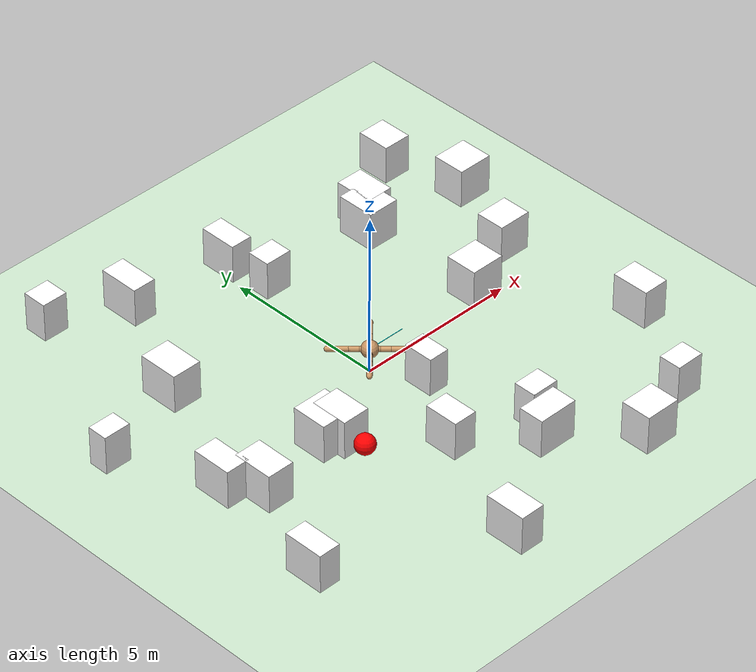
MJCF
<mujoco model="ant">
  <compiler angle="radian" coordinate="local" inertiafromgeom="true"/>
  <option integrator="RK4" timestep="0.01"/>
    <size nconmax="500"/>
  <custom>
    <numeric data="0.0 0.0 0.55 1.0 0.0 0.0 0.0 0.0 1.0 0.0 -1.0 0.0 -1.0 0.0 1.0" name="init_qpos"/>
  </custom>
  <default>
    <joint armature="1" damping="1" limited="true"/>
    <geom conaffinity="0" condim="3" density="5.0" friction="1 0.5 0.5" margin="0.01" rgba="0.8 0.6 0.4 1"/>
  </default>
  <asset>
    <texture builtin="gradient" height="100" rgb1="1 1 1" rgb2="0 0 0" type="skybox" width="100"/>
    <texture builtin="flat" height="1278" mark="cross" markrgb="1 1 1" name="texgeom" random="0.01" rgb1="0.8 0.6 0.4" rgb2="0.8 0.6 0.4" type="cube" width="127"/>
    <texture builtin="checker" height="100" name="texplane" rgb1="0 0 0" rgb2="0.8 0.8 0.8" type="2d" width="100"/>
    <material name="MatPlane" reflectance="0.2" shininess="1" specular="1" texrepeat="0 0" texture="texplane"/>
    <material name="geom" texture="texgeom" texuniform="true"/>
  </asset>

  <worldbody>
    <light cutoff="100" diffuse="1 1 1" dir="-0 0 -1.3" directional="true" exponent="1" pos="0 0 1.3" specular=".1 .1 .1"/>
    <geom conaffinity="1" condim="3" material="MatPlane" name="floor" pos="0 0 0" rgba="0.8 0.9 0.8 1" size="10 10 1" type="plane"/>

    <body name="torso" pos="0 0 0.75">
      <camera name="track" mode="trackcom" pos="0 -3 0.3" xyaxes="1 0 0 0 0 1"/>
      <geom name="torso_geom" pos="0 0 0" size="0.25" mass="0.1" type="sphere"/>
      <joint armature="0" damping="0" limited="false" margin="0.01" name="root" pos="0 0 0" type="free"/>

      <body name="front_left_leg" pos="0 0 0">
        <geom fromto="0.0 0.0 0.0 0.2 0.2 0.0" name="aux_1_geom" size="0.08" type="capsule"/>
        <body name="aux_1" pos="0.2 0.2 0">
          <joint axis="0 0 1" name="hip_1" pos="0.0 0.0 0.0" range="-0.7 0.7" type="hinge"/>
          <geom fromto="0.0 0.0 0.0 0.2 0.2 0.0" name="left_leg_geom" size="0.08" type="capsule"/>
          <body pos="0.2 0.2 0">
            <joint axis="-1 1 0" name="ankle_1" pos="0.0 0.0 0.0" range="0.8 1.4" type="hinge"/>
            <geom fromto="0.0 0.0 0.0 0.4 0.4 0.0" name="left_ankle_geom" size="0.08" type="capsule"/>
          </body>
        </body>
      </body>

      <body name="front_right_leg" pos="0 0 0">
        <geom fromto="0.0 0.0 0.0 -0.2 0.2 0.0" name="aux_2_geom" size="0.08" type="capsule"/>
        <body name="aux_2" pos="-0.2 0.2 0">
          <joint axis="0 0 1" name="hip_2" pos="0.0 0.0 0.0" range="-0.7 0.7" type="hinge"/>
          <geom fromto="0.0 0.0 0.0 -0.2 0.2 0.0" name="right_leg_geom" size="0.08" type="capsule"/>
          <body pos="-0.2 0.2 0">
            <joint axis="1 1 0" name="ankle_2" pos="0.0 0.0 0.0" range="-1.4 -0.8" type="hinge"/>
            <geom fromto="0.0 0.0 0.0 -0.4 0.4 0.0" name="right_ankle_geom" size="0.08" type="capsule"/>
          </body>
        </body>
      </body>

      <body name="back_leg" pos="0 0 0">
        <geom fromto="0.0 0.0 0.0 -0.2 -0.2 0.0" name="aux_3_geom" size="0.08" type="capsule"/>
        <body name="aux_3" pos="-0.2 -0.2 0">
          <joint axis="0 0 1" name="hip_3" pos="0.0 0.0 0.0" range="-0.7 0.7" type="hinge"/>
          <geom fromto="0.0 0.0 0.0 -0.2 -0.2 0.0" name="back_leg_geom" size="0.08" type="capsule"/>
          <body pos="-0.2 -0.2 0">
            <joint axis="-1 1 0" name="ankle_3" pos="0.0 0.0 0.0" range="-1.4 -0.8" type="hinge"/>
            <geom fromto="0.0 0.0 0.0 -0.4 -0.4 0.0" name="third_ankle_geom" size="0.08" type="capsule"/>
          </body>
        </body>
      </body>

      <body name="right_back_leg" pos="0 0 0">
        <geom fromto="0.0 0.0 0.0 0.2 -0.2 0.0" name="aux_4_geom" size="0.08" type="capsule"/>
        <body name="aux_4" pos="0.2 -0.2 0">
          <joint axis="0 0 1" name="hip_4" pos="0.0 0.0 0.0" range="-0.7 0.7" type="hinge"/>
          <geom fromto="0.0 0.0 0.0 0.2 -0.2 0.0" name="rightback_leg_geom" size="0.08" type="capsule"/>
          <body pos="0.2 -0.2 0">
            <joint axis="1 1 0" name="ankle_4" pos="0.0 0.0 0.0" range="0.8 1.4" type="hinge"/>
            <geom fromto="0.0 0.0 0.0 0.4 -0.4 0.0" name="fourth_ankle_geom" size="0.08" type="capsule"/>
          </body>
        </body>
      </body>

      <body name="left_feeler" pos="0 0 0">
        <joint axis="0 0 1" name="lf1" pos="0.0 0.0 0.0" range="0.08 0.3" type="hinge"/>
        <geom fromto="0.2 0.0 0.0 0.6 0.0 0.0" name="lf1_geom" size="0.01" density="1" type="capsule" rgba="0 1 1 1"/>
        <body pos="0.6 0.0 0">
          <joint axis="0 1 0" name="lf2" pos="0.0 0.0 0.0" range="-0.65 0.3" type="hinge"/>
          <geom fromto="0.0 0.0 0.0 0.6 0.0 0.0" name="lf2_geom" size="0.01" density="1" type="capsule" rgba="0 1 1 1"/>
        </body>
      </body>

      <body name="right_feeler" pos="0 0 0">
        <joint axis="0 0 1" name="rf1" pos="0.0 0.0 0.0" range="-0.3 -0.08" type="hinge"/>
        <geom fromto="0.2 0.0 0.0 0.6 0.0 0.0" name="rf1_geom" size="0.01" density="1" type="capsule" rgba="0 1 1 1"/>
        <body pos="0.6 0.0 0">
          <joint axis="0 1 0" name="rf2" pos="0.0 0.0 0.0" range="-0.65 0.3" type="hinge"/>
          <geom fromto="0.0 0.0 0.0 0.6 0.0 0.0" name="rf2_geom" size="0.01" density="1" type="capsule" rgba="0 1 1 1"/>
        </body>
      </body>

    </body>

<!-- DEFINE CUBES AND GOAL HERE -->
    <body>
        <geom conaffinity='1' condim='3' name='cube0_geom' pos='-6.624132153950618 -4.70751380406415 0.6' size='0.33675148212889866 0.6130657452645387 0.6' rgba='1 1 1 1' mass='70' type='box'/>
     </body>
    <body>
        <geom conaffinity='1' condim='3' name='cube1_geom' pos='-5.379428008403618 -1.6510016737190232 0.6' size='0.4188511618630135 0.6152740674044439 0.6' rgba='1 1 1 1' mass='70' type='box'/>
     </body>
    <body>
        <geom conaffinity='1' condim='3' name='cube2_geom' pos='-6.061925088177759 -0.799275584998091 0.6' size='0.3667043484606791 0.6075460073109838 0.6' rgba='1 1 1 1' mass='70' type='box'/>
     </body>
    <body>
        <geom conaffinity='1' condim='3' name='cube3_geom' pos='-7.313495616745573 2.0625399454837225 0.6' size='0.42073759359617935 0.3112822708790627 0.6' rgba='1 1 1 1' mass='70' type='box'/>
     </body>
    <body>
        <geom conaffinity='1' condim='3' name='cube4_geom' pos='-4.87785251860212 7.311611497672324 0.6' size='0.3989925241779305 0.37797515674137294 0.6' rgba='1 1 1 1' mass='70' type='box'/>
     </body>
    <body>
        <geom conaffinity='1' condim='3' name='cube5_geom' pos='-1.9970141181107173 -7.21598425264785 0.6' size='0.37781182533290136 0.6160198506259781 0.6' rgba='1 1 1 1' mass='70' type='box'/>
     </body>
    <body>
        <geom conaffinity='1' condim='3' name='cube6_geom' pos='-2.5388893557036907 -1.5119176341323946 0.6' size='0.42443815199381985 0.5748634522963687 0.6' rgba='1 1 1 1' mass='70' type='box'/>
     </body>
    <body>
        <geom conaffinity='1' condim='3' name='cube7_geom' pos='-2.9020567429920017 -1.2821806957206123 0.6' size='0.5526803734976382 0.5476241617725851 0.6' rgba='1 1 1 1' mass='70' type='box'/>
     </body>
    <body>
        <geom conaffinity='1' condim='3' name='cube8_geom' pos='-4.36659356683937 2.9520212170105946 0.6' size='0.4617479632055156 0.6213319246797261 0.6' rgba='1 1 1 1' mass='70' type='box'/>
     </body>
    <body>
        <geom conaffinity='1' condim='3' name='cube9_geom' pos='-2.7773687845778143 6.351646146126533 0.6' size='0.3637259919791728 0.629354029411991 0.6' rgba='1 1 1 1' mass='70' type='box'/>
     </body>
    <body>
        <geom conaffinity='1' condim='3' name='cube10_geom' pos='1.2935068000355616 -5.196254184895889 0.6' size='0.6190214616170522 0.39009365258802364 0.6' rgba='1 1 1 1' mass='70' type='box'/>
     </body>
    <body>
        <geom conaffinity='1' condim='3' name='cube11_geom' pos='-0.604978282144897 -3.5785233015395943 0.6' size='0.36595517747397693 0.528168178632467 0.6' rgba='1 1 1 1' mass='70' type='box'/>
     </body>
    <body>
        <geom conaffinity='1' condim='3' name='cube12_geom' pos='0.7299334497219738 -1.3715194587420942 0.6' size='0.32295634350828767 0.46283968760690886 0.6' rgba='1 1 1 1' mass='70' type='box'/>
     </body>
    <body>
        <geom conaffinity='1' condim='3' name='cube13_geom' pos='0.5960311774951905 4.444234793977268 0.6' size='0.4236378316389419 0.35355770569341616 0.6' rgba='1 1 1 1' mass='70' type='box'/>
     </body>
    <body>
        <geom conaffinity='1' condim='3' name='cube14_geom' pos='0.34909628096031486 5.864340188963686 0.6' size='0.3394532358642698 0.584911804600349 0.6' rgba='1 1 1 1' mass='70' type='box'/>
     </body>
    <body>
        <geom conaffinity='1' condim='3' name='cube15_geom' pos='3.277250111330515 -6.94875319688016 0.6' size='0.5445435780790004 0.4669564455745119 0.6' rgba='1 1 1 1' mass='70' type='box'/>
     </body>
    <body>
        <geom conaffinity='1' condim='3' name='cube16_geom' pos='1.7350702912685123 -4.360840031998166 0.6' size='0.4275537158782617 0.34603581253474935 0.6' rgba='1 1 1 1' mass='70' type='box'/>
     </body>
    <body>
        <geom conaffinity='1' condim='3' name='cube17_geom' pos='4.387194308754401 0.44309621307435787 0.6' size='0.5339575932893368 0.4994505146763517 0.6' rgba='1 1 1 1' mass='70' type='box'/>
     </body>
    <body>
        <geom conaffinity='1' condim='3' name='cube18_geom' pos='4.160006704146568 4.285354421886549 0.6' size='0.49966200225505325 0.5987238754269947 0.6' rgba='1 1 1 1' mass='70' type='box'/>
     </body>
    <body>
        <geom conaffinity='1' condim='3' name='cube19_geom' pos='4.494044500230862 4.781752609426062 0.6' size='0.43316610467900746 0.5956547869116192 0.6' rgba='1 1 1 1' mass='70' type='box'/>
     </body>
    <body>
        <geom conaffinity='1' condim='3' name='cube20_geom' pos='5.227982561500703 -6.244394793021316 0.6' size='0.4340775378775948 0.3445377357829429 0.6' rgba='1 1 1 1' mass='70' type='box'/>
     </body>
    <body>
        <geom conaffinity='1' condim='3' name='cube21_geom' pos='6.887360829823585 -3.28043568241012 0.6' size='0.403375069244178 0.576946107589154 0.6' rgba='1 1 1 1' mass='70' type='box'/>
     </body>
    <body>
        <geom conaffinity='1' condim='3' name='cube22_geom' pos='6.307597042689832 1.2466882306264542 0.6' size='0.5180025772033097 0.45403583705639 0.6' rgba='1 1 1 1' mass='70' type='box'/>
     </body>
    <body>
        <geom conaffinity='1' condim='3' name='cube23_geom' pos='7.363699238884948 3.834409361798275 0.6' size='0.5499660793645349 0.5107890239879223 0.6' rgba='1 1 1 1' mass='70' type='box'/>
     </body>
    <body>
        <geom conaffinity='1' condim='3' name='cube24_geom' pos='6.549569243060979 6.077381174014516 0.6' size='0.4411973036445008 0.5173300217713641 0.6' rgba='1 1 1 1' mass='70' type='box'/>
     </body>
    <body>
        <geom conaffinity='1' condim='3' name='goal_geom' pos='-2.6625503943577473 -2.536143853957156 0.6' size='0.3' rgba='1 0 0 1' mass='1' type='sphere'/>
     </body>

  </worldbody>

  <actuator>
    <position joint="hip_4" kp="20"/>
    <position joint="ankle_4" kp="20"/>
    <position joint="hip_1" kp="20"/>
    <position joint="ankle_1" kp="20"/>
    <position joint="hip_2" kp="20"/>
    <position joint="ankle_2" kp="20"/>
    <position joint="hip_3" kp="20"/>
    <position joint="ankle_3" kp="20"/>
    <motor ctrllimited="true" ctrlrange="-1.0 1.0" joint="lf1" gear="20"/>
    <motor ctrllimited="true" ctrlrange="-1.0 1.0" joint="lf2" gear="20"/>
    <motor ctrllimited="true" ctrlrange="-1.0 1.0" joint="rf1" gear="20"/>
    <motor ctrllimited="true" ctrlrange="-1.0 1.0" joint="rf2" gear="20"/>
  </actuator>
</mujoco>
